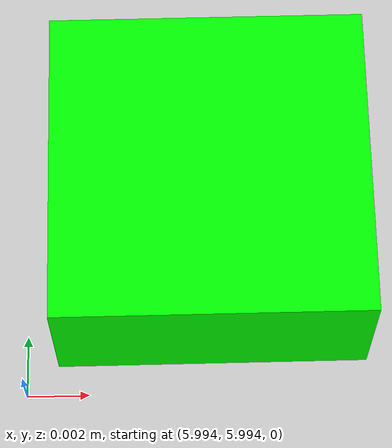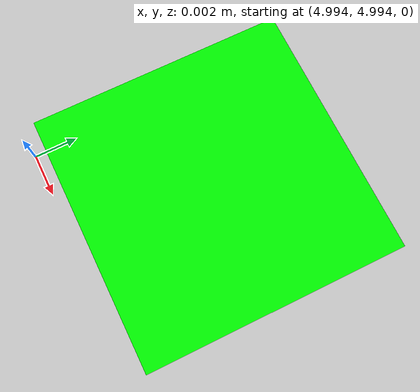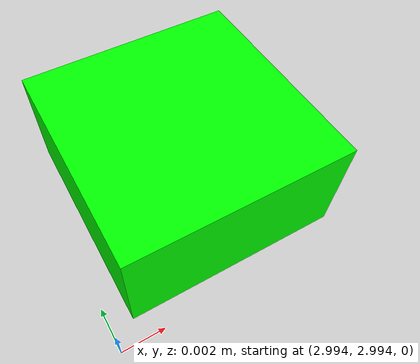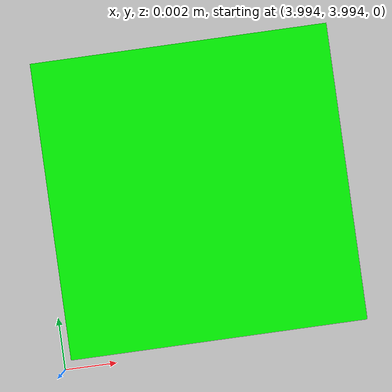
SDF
<sdf version="1.6">
 <world name="default">
  <light name="sun" type="directional">
   <cast_shadows>0</cast_shadows>
   <pose>0 0 10 0 -0 0</pose>
   <diffuse>0.8 0.8 0.8 1</diffuse>
   <specular>0.2 0.2 0.2 1</specular>
   <attenuation>
    <range>1000</range>
    <constant>0.9</constant>
    <linear>0.01</linear>
    <quadratic>0.001</quadratic>
   </attenuation>
   <direction>-0.5 0.1 -0.9</direction>
  </light>
  <include><uri>model://ground_plane</uri></include>
  <gravity>0 0 -9.8</gravity>
  <magnetic_field>6e-06 2.3e-05 -4.2e-05</magnetic_field>
  <atmosphere type="adiabatic"/>
  <physics name="default_physics" default="0" type="ode">
   <max_step_size>0.001</max_step_size>
   <real_time_factor>1</real_time_factor>
   <real_time_update_rate>1000</real_time_update_rate>
  </physics>
  <scene><ambient>0.4 0.4 0.4 1</ambient><background>0.7 0.7 0.7 1</background><shadows>0</shadows></scene>
  <spherical_coordinates>
   <surface_model>EARTH_WGS84</surface_model>
   <latitude_deg>0</latitude_deg>
   <longitude_deg>0</longitude_deg>
   <elevation>0</elevation>
   <heading_deg>0</heading_deg>
  </spherical_coordinates>
  <model name="source_0">
   <pose>1 1 0 0 0 0</pose>
   <static>true</static>
   <link name="link">
    <collision name="collision"><geometry><box><size>0.01 0.01 0.01</size></box></geometry></collision>
    <visual name="visual">
     <geometry><box><size>0.01 0.01 0.01</size></box></geometry>
     <material><ambient>0 1 0 1</ambient><diffuse>0 1 0 1</diffuse></material>
    </visual>
    <sensor name="radiation_source_0" type="radiation_source">
     <always_on>1</always_on>
     <update_rate>1.0</update_rate>
     <topic>source_0/gamma</topic>
     <plugin filename="libradiation_source_plugin.so" name="radiation_source_plugin"/>
    </sensor>
   </link>
  </model>
  <model name="source_1">
   <pose>2 2 0 0 0 0</pose>
   <static>true</static>
   <link name="link">
    <collision name="collision"><geometry><box><size>0.01 0.01 0.01</size></box></geometry></collision>
    <visual name="visual">
     <geometry><box><size>0.01 0.01 0.01</size></box></geometry>
     <material><ambient>0 1 0 1</ambient><diffuse>0 1 0 1</diffuse></material>
    </visual>
    <sensor name="radiation_source_1" type="radiation_source">
     <always_on>1</always_on>
     <update_rate>1.0</update_rate>
     <topic>source_1/gamma</topic>
     <plugin filename="libradiation_source_plugin.so" name="radiation_source_plugin"/>
    </sensor>
   </link>
  </model>
  <model name="source_2">
   <pose>3 3 0 0 0 0</pose>
   <static>true</static>
   <link name="link">
    <collision name="collision"><geometry><box><size>0.01 0.01 0.01</size></box></geometry></collision>
    <visual name="visual">
     <geometry><box><size>0.01 0.01 0.01</size></box></geometry>
     <material><ambient>0 1 0 1</ambient><diffuse>0 1 0 1</diffuse></material>
    </visual>
    <sensor name="radiation_source_2" type="radiation_source">
     <always_on>1</always_on>
     <update_rate>1.0</update_rate>
     <topic>source_2/gamma</topic>
     <plugin filename="libradiation_source_plugin.so" name="radiation_source_plugin"/>
    </sensor>
   </link>
  </model>
  <model name="source_3">
   <pose>4 4 0 0 0 0</pose>
   <static>true</static>
   <link name="link">
    <collision name="collision"><geometry><box><size>0.01 0.01 0.01</size></box></geometry></collision>
    <visual name="visual">
     <geometry><box><size>0.01 0.01 0.01</size></box></geometry>
     <material><ambient>0 1 0 1</ambient><diffuse>0 1 0 1</diffuse></material>
    </visual>
    <sensor name="radiation_source_3" type="radiation_source">
     <always_on>1</always_on>
     <update_rate>1.0</update_rate>
     <topic>source_3/gamma</topic>
     <plugin filename="libradiation_source_plugin.so" name="radiation_source_plugin"/>
    </sensor>
   </link>
  </model>
  <model name="source_4">
   <pose>5 5 0 0 0 0</pose>
   <static>true</static>
   <link name="link">
    <collision name="collision"><geometry><box><size>0.01 0.01 0.01</size></box></geometry></collision>
    <visual name="visual">
     <geometry><box><size>0.01 0.01 0.01</size></box></geometry>
     <material><ambient>0 1 0 1</ambient><diffuse>0 1 0 1</diffuse></material>
    </visual>
    <sensor name="radiation_source_4" type="radiation_source">
     <always_on>1</always_on>
     <update_rate>1.0</update_rate>
     <topic>source_4/gamma</topic>
     <plugin filename="libradiation_source_plugin.so" name="radiation_source_plugin"/>
    </sensor>
   </link>
  </model>
  <model name="source_5">
   <pose>6 6 0 0 0 0</pose>
   <static>true</static>
   <link name="link">
    <collision name="collision"><geometry><box><size>0.01 0.01 0.01</size></box></geometry></collision>
    <visual name="visual">
     <geometry><box><size>0.01 0.01 0.01</size></box></geometry>
     <material><ambient>0 1 0 1</ambient><diffuse>0 1 0 1</diffuse></material>
    </visual>
    <sensor name="radiation_source_5" type="radiation_source">
     <always_on>1</always_on>
     <update_rate>1.0</update_rate>
     <topic>source_5/gamma</topic>
     <plugin filename="libradiation_source_plugin.so" name="radiation_source_plugin"/>
    </sensor>
   </link>
  </model>
 </world>
</sdf>
